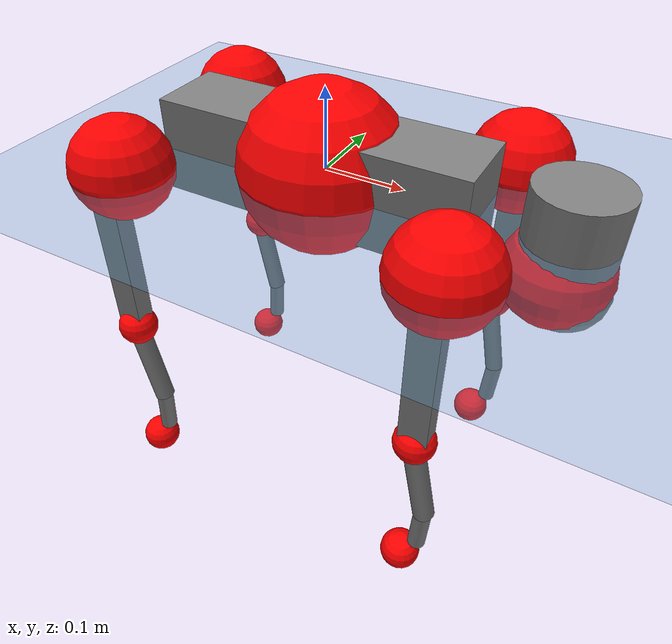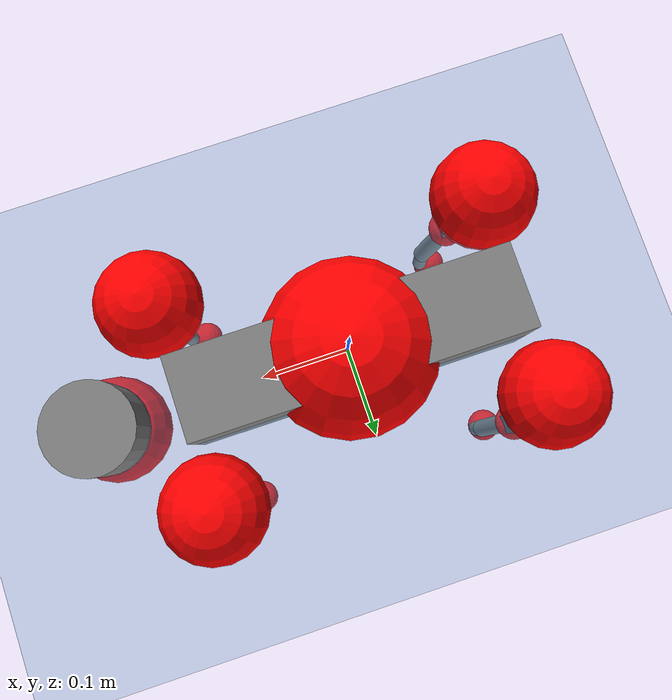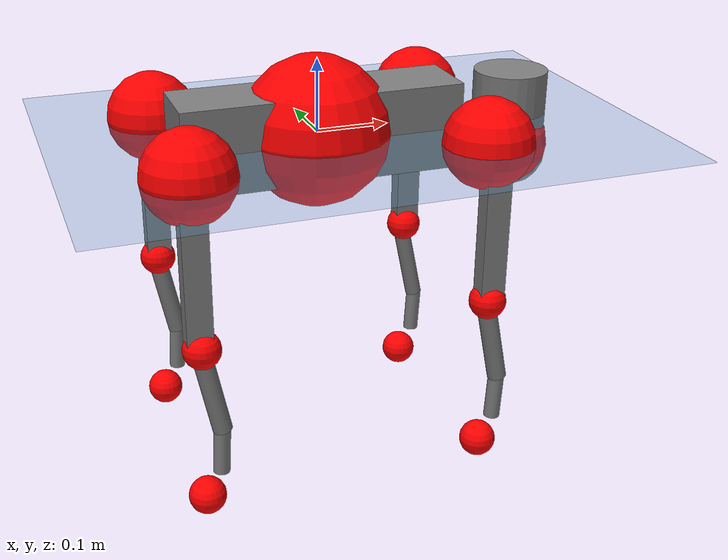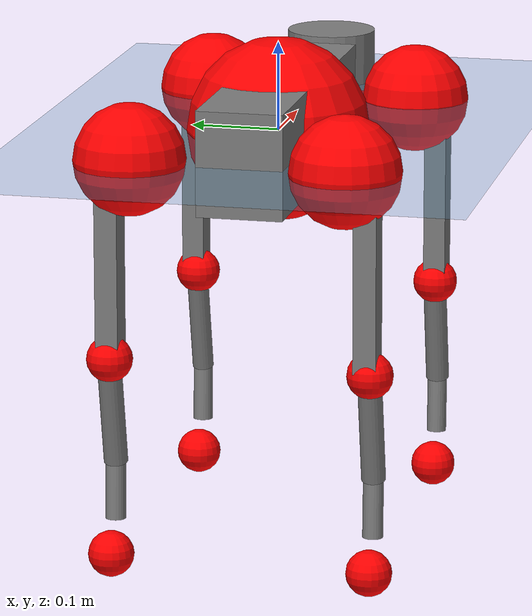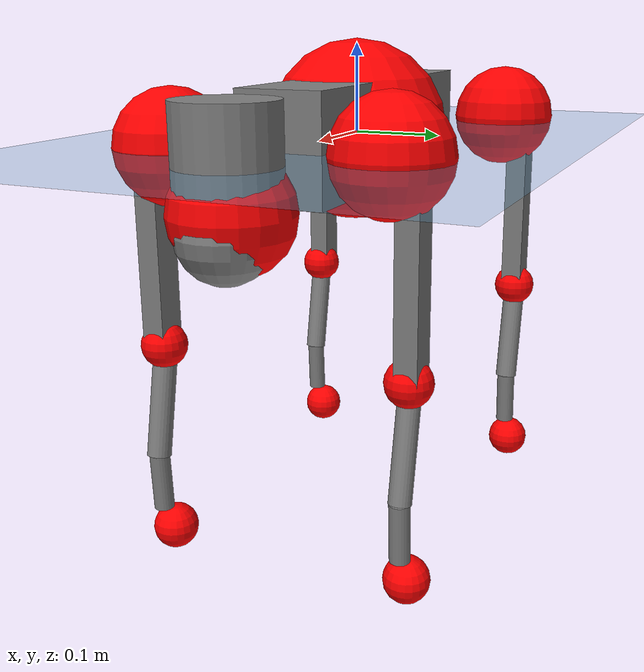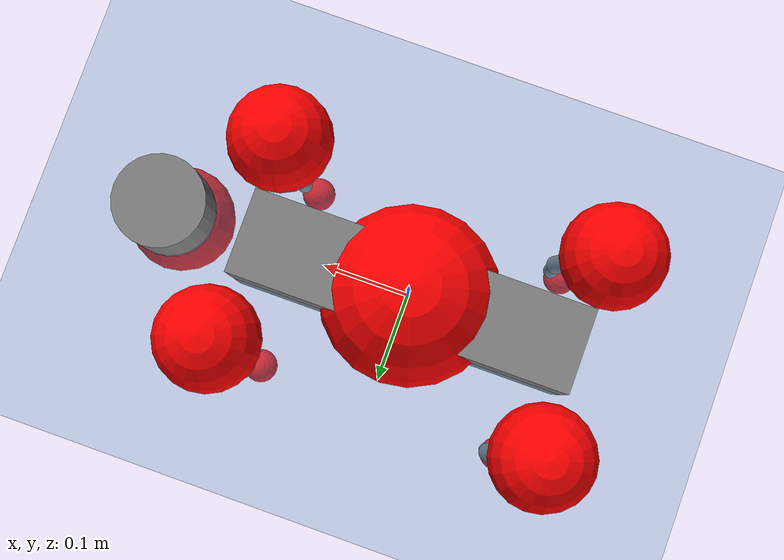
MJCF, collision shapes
<mujoco model="go2">
  <compiler angle="radian" assetdir="assets" balanceinertia="true" inertiafromgeom="false"/>

  <option timestep="0.005" density="1.2" viscosity="2e-05"/>

  <size nkey="1"/>

  <visual>
    <quality shadowsize="8192"/>
    <map shadowclip="0.5"/>
  </visual>

  <default>
    <default class="/">
      <geom contype="0" conaffinity="0" group="1" solref="-1000 -80"/>
      <site size="0.01 0.005 0.005" group="5"/>
      <general forcelimited="true" biastype="affine" gainprm="20" biasprm="0 -20 -0.5"/>
      <default class="go2">
        <joint armature="0.01" damping="0.01" frictionloss="0.2"/>
        <geom condim="1" margin="0.001"/>
        <default class="visual">
          <geom type="mesh" group="2"/>
        </default>
        <default class="collision">
          <geom group="3"/>
          <default class="foot">
            <geom size="0.022 0 0" condim="6" priority="1" friction="0.8 0.02 0.01" solimp="0.015 1 0.022"/>
          </default>
        </default>
        <default class="reward_collision_sphere">
          <geom group="5" rgba="1 0 0 1"/>
        </default>
      </default>
    </default>
  </default>

  <asset>
    <texture type="skybox" colorspace="auto" name="//unnamed_texture_0" builtin="gradient" rgb1="0.95 0.95 0.95" rgb2="0.95 0.95 0.95" width="100" height="600"/>
    <texture type="2d" colorspace="auto" name="texplane" builtin="checker" rgb1="0.345 0.575 0.748" rgb2="0.345 0.575 0.748" markrgb="1 1 1" width="512" height="512"/>
    <material name="MatPlane" class="/" texture="texplane" texuniform="true" texrepeat="2 2" specular="0.9"/>
    <material name="metal" class="/" rgba="0.9 0.95 0.95 1"/>
    <material name="black" class="/" rgba="0 0 0 1"/>
    <material name="white" class="/"/>
    <material name="gray" class="/" rgba="0.671705 0.692426 0.77427 1"/>
    <mesh name="base_0" class="/" file="base_0.obj"/>
    <mesh name="base_1" class="/" file="base_1.obj"/>
    <mesh name="base_2" class="/" file="base_2.obj"/>
    <mesh name="base_3" class="/" file="base_3.obj"/>
    <mesh name="base_4" class="/" file="base_4.obj"/>
    <mesh name="hip_0" class="/" file="hip_0.obj"/>
    <mesh name="hip_1" class="/" file="hip_1.obj"/>
    <mesh name="thigh_0" class="/" file="thigh_0.obj"/>
    <mesh name="thigh_1" class="/" file="thigh_1.obj"/>
    <mesh name="thigh_mirror_0" class="/" file="thigh_mirror_0.obj"/>
    <mesh name="thigh_mirror_1" class="/" file="thigh_mirror_1.obj"/>
    <mesh name="calf_0" class="/" file="calf_0.obj"/>
    <mesh name="calf_1" class="/" file="calf_1.obj"/>
    <mesh name="calf_mirror_0" class="/" file="calf_mirror_0.obj"/>
    <mesh name="calf_mirror_1" class="/" file="calf_mirror_1.obj"/>
    <mesh name="foot" class="/" file="foot.obj"/>
  </asset>

  <worldbody>
    <geom name="floor" class="/" size="100 100 0.125" type="plane" group="0" material="MatPlane"/>
    <light name="toplight_shadow" class="/" pos="0 0 5" dir="0.0990148 0.0990148 -0.990148" type="directional" ambient="0.04 0.04 0.04" diffuse="0.55 0.55 0.55" specular="0.12 0.12 0.12"/>
    <light name="toplight_fill" class="/" pos="0 0 5" dir="0.0990148 0.0990148 -0.990148" type="directional" castshadow="false" ambient="0.04 0.04 0.04" diffuse="0.3 0.3 0.3" specular="0.08 0.08 0.08"/>
    <body name="trunk" childclass="go2" pos="-0.00250303 -0.000508823 0.00218179" quat="1 0.000264351 0.000440822 -0.000595847">
      <inertial pos="0.0267421 0.00249705 -0.00752769" quat="0.00182806 0.704737 -0.00241034 0.709462" mass="7.35759" diaginertia="0.114464 0.117869 0.0335826"/>
      <joint name="//unnamed_joint_0" type="free" armature="0" damping="0" frictionloss="0"/>
      <geom name="//unnamed_geom_1" class="visual" material="black" mesh="base_0"/>
      <geom name="//unnamed_geom_2" class="visual" material="black" mesh="base_1"/>
      <geom name="//unnamed_geom_3" class="visual" material="black" mesh="base_2"/>
      <geom name="//unnamed_geom_4" class="visual" material="white" mesh="base_3"/>
      <geom name="//unnamed_geom_5" class="visual" material="gray" mesh="base_4"/>
      <geom name="trunk_1" class="collision" size="0.19456 0.0483555 0.0589575" type="box"/>
      <geom name="trunk_2" class="collision" size="0.0517171 0.0465454" pos="0.288653 0 0.0105644" type="cylinder"/>
      <geom name="trunk_3" class="collision" size="0.048614" pos="0.296755 0 -0.0633861"/>
      <geom name="//unnamed_geom_9" class="reward_collision_sphere" size="0.103434"/>
      <geom name="//unnamed_geom_10" class="reward_collision_sphere" size="0.0620605" pos="0.283589 0 -0.0475396"/>
      <site name="imu" pos="-0.0440633 -0.00174338 0.0626217" size="0.0103434"/>
      <camera name="track" pos="0 -2.06754 0" quat="0.707107 0.707107 0 0" mode="trackcom"/>
      <camera name="ego_camera" pos="0.315999 0 0.0475396" quat="-0.5 -0.5 0.5 0.5"/>
      <body name="FL_hip" pos="0.197092 0.0499995 0.00162031" quat="0.999999 0.00036521 0.000996043 -0.000151871">
        <inertial pos="-0.00525026 0.0031927 -0.00123429" quat="0.496728 0.499792 0.505539 0.497895" mass="0.811904" diaginertia="0.000998675 0.000768432 0.000672383"/>
        <joint name="FL_hip_joint" pos="0 0 0" axis="0.99998 -0.00449521 -0.00443717" stiffness="0.00212472" range="-1.05149 1.08332" armature="0.0105237" damping="0.0102669" frictionloss="0.209547"/>
        <geom name="//unnamed_geom_11" class="visual" material="metal" mesh="hip_0"/>
        <geom name="//unnamed_geom_12" class="visual" material="gray" mesh="hip_1"/>
        <geom name="//unnamed_geom_13" class="collision" size="0.0475797 0.0206868" pos="0 0.0827017 0" quat="0.707107 0.707107 0 0" type="cylinder"/>
        <geom name="//unnamed_geom_14" class="reward_collision_sphere" size="0.0620605" pos="0 0.072364 0"/>
        <body name="FL_thigh" pos="-0.000824315 0.0944175 0.000550726" quat="0.999999 -0.000640866 0.00101659 -0.00105606">
          <inertial pos="-0.00344227 -0.023513 -0.0337285" quat="0.827918 0.085837 -0.0265934 0.553603" mass="1.26131" diaginertia="0.00621698 0.00717891 0.00116956"/>
          <joint name="FL_thigh_joint" pos="0 0 0" axis="-0.00992147 0.999951 0.000575786" range="-1.62546 3.48708" armature="0.00907856" damping="0.00154208" frictionloss="0.200155"/>
          <geom name="//unnamed_geom_15" class="visual" material="metal" mesh="thigh_0"/>
          <geom name="//unnamed_geom_16" class="visual" material="gray" mesh="thigh_1"/>
          <geom name="//unnamed_geom_17" class="collision" size="0.110157 0.0126707 0.0175838" pos="0 0 -0.11251" quat="0.707107 0 0.707107 0" type="box"/>
          <body name="FL_calf" pos="-0.00217357 -0.00294808 -0.226291" quat="0.999999 -0.00108857 -0.000156054 0.000475595">
            <inertial pos="0.0070935 0.00197541 -0.150417" quat="0.710483 0.000983714 -0.0025973 0.703709" mass="0.256417" diaginertia="0.00158106 0.00171 6.99589e-05"/>
            <joint name="FL_calf_joint" pos="0 0 0" axis="-0.00417712 0.999989 0.00188857" stiffness="0.0125016" range="-2.72485 -0.849238" armature="0.0114187" damping="0.00854592" frictionloss="0.20105"/>
            <geom name="//unnamed_geom_18" class="visual" material="gray" mesh="calf_0"/>
            <geom name="//unnamed_geom_19" class="visual" material="black" mesh="calf_1"/>
            <geom name="FL_calf0" class="collision" size="0.0124121 0.0620605" pos="0.00810254 0 -0.0633861" quat="0.994493 0 -0.104807 0" type="cylinder"/>
            <geom name="//unnamed_geom_21" class="collision" size="0.0113778 0.0336161" pos="0.0202563 0 -0.156352" quat="0.999688 0 0.0249974 0" type="cylinder"/>
            <geom name="//unnamed_geom_22" class="visual" pos="0 0 -0.225021" quat="1 0 0 0" material="black" mesh="foot"/>
            <geom name="FL_foot" class="foot" size="0.0205675" pos="-0.00202563 0 -0.225021"/>
            <geom name="//unnamed_geom_24" class="reward_collision_sphere" size="0.0258585"/>
            <geom name="//unnamed_geom_25" class="reward_collision_sphere" size="0.0258585" pos="-0.00202563 0 -0.225021"/>
            <site name="FL_foot" class="foot" pos="-0.00202563 0 -0.225021" size="0.0103434"/>
          </body>
        </body>
      </body>
      <body name="FR_hip" pos="0.199802 -0.0468675 -0.00186314" quat="1 0.00023721 0.000357813 7.49652e-05">
        <inertial pos="-0.00555918 0.00372488 -9.78681e-05" quat="0.482983 0.504034 0.516809 0.495565" mass="0.760131" diaginertia="0.000989261 0.000692553 0.000659185"/>
        <joint name="FR_hip_joint" pos="0 0 0" axis="0.99995 -0.00987641 -0.00134311" stiffness="0.0116581" range="-1.00039 1.07133" armature="0.00963276" damping="0.0160089" frictionloss="0.228347"/>
        <geom name="//unnamed_geom_26" class="visual" pos="0 -1.97441e-10 -8.46865e-09" quat="4.63268e-05 1 0 0" material="metal" mesh="hip_0"/>
        <geom name="//unnamed_geom_27" class="visual" pos="0 -3.20075e-10 2.09462e-08" quat="4.63268e-05 1 0 0" material="gray" mesh="hip_1"/>
        <geom name="//unnamed_geom_28" class="collision" size="0.0475797 0.0206868" pos="0 -0.0827017 0" quat="0.707107 0.707107 0 0" type="cylinder"/>
        <geom name="//unnamed_geom_29" class="reward_collision_sphere" size="0.0620605" pos="0 -0.072364 0"/>
        <body name="FR_thigh" pos="0.000826187 -0.099087 0.00300741" quat="0.999999 -0.00112142 -0.000342684 -0.000146146">
          <inertial pos="-0.00771035 0.0208248 -0.0351013" quat="0.550761 -0.0214353 0.0832713 0.830222" mass="1.21268" diaginertia="0.00614093 0.00686119 0.00106941"/>
          <joint name="FR_thigh_joint" pos="0 0 0" axis="0.00699048 -0.999976 -0.000321897" stiffness="0.000172519" range="-3.44743 1.51778" armature="0.0103798" damping="0.00561449" frictionloss="0.22523"/>
          <geom name="//unnamed_geom_30" class="visual" material="metal" mesh="thigh_mirror_0"/>
          <geom name="//unnamed_geom_31" class="visual" material="gray" mesh="thigh_mirror_1"/>
          <geom name="//unnamed_geom_32" class="collision" size="0.110157 0.0126707 0.0175838" pos="0 0 -0.11251" quat="0.707107 0 0.707107 0" type="box"/>
          <body name="FR_calf" pos="-0.000793997 0.0012152 -0.222889" quat="1 0.000225022 0.000129737 -9.06428e-05">
            <inertial pos="0.00767039 0.000667031 -0.149808" quat="0.688792 -0.00319424 0.0108605 0.72487" mass="0.263771" diaginertia="0.00159387 0.00166389 6.79202e-05"/>
            <joint name="FR_calf_joint" pos="0 0 0" axis="0.00329195 -0.999946 -0.00987104" stiffness="0.0176452" range="0.91554 2.71267" armature="0.00941068" damping="0" frictionloss="0.222988"/>
            <geom name="//unnamed_geom_33" class="visual" material="gray" mesh="calf_mirror_0"/>
            <geom name="//unnamed_geom_34" class="visual" material="black" mesh="calf_mirror_1"/>
            <geom name="FR_calf0" class="collision" size="0.0134464 0.0620605" pos="0.0101282 0 -0.0633861" quat="0.995004 0 -0.0998334 0" type="cylinder"/>
            <geom name="//unnamed_geom_36" class="collision" size="0.0113778 0.0336161" pos="0.0202563 0 -0.156352" quat="0.999688 0 0.0249974 0" type="cylinder"/>
            <geom name="//unnamed_geom_37" class="visual" pos="0 0 -0.225021" quat="1 0 0 0" material="black" mesh="foot"/>
            <geom name="FR_foot" class="foot" size="0.0244738" pos="-0.00202563 0 -0.225021"/>
            <geom name="//unnamed_geom_39" class="reward_collision_sphere" size="0.0258585"/>
            <geom name="//unnamed_geom_40" class="reward_collision_sphere" size="0.0258585" pos="-0.00202563 0 -0.225021"/>
            <site name="FR_foot" class="foot" pos="-0.00202563 0 -0.225021" size="0.0103434"/>
          </body>
        </body>
      </body>
      <body name="RL_hip" pos="-0.198636 0.0483019 0.00305646" quat="1 -2.98742e-05 3.14031e-05 0.000107516">
        <inertial pos="0.00532022 0.00177157 0.00507052" quat="0.512347 0.494625 0.496239 0.496582" mass="0.709879" diaginertia="0.000831636 0.000647659 0.000593466"/>
        <joint name="RL_hip_joint" pos="0 0 0" axis="-0.999952 0.00361014 -0.00911172" range="-1.03329 1.08901" armature="0.00937046" damping="0.0263277" frictionloss="0.202955"/>
        <geom name="//unnamed_geom_41" class="visual" pos="3.79984e-10 0 7.44856e-08" quat="4.63268e-05 0 1 0" material="metal" mesh="hip_0"/>
        <geom name="//unnamed_geom_42" class="visual" pos="6.15999e-10 0 6.60581e-08" quat="4.63268e-05 0 1 0" material="gray" mesh="hip_1"/>
        <geom name="//unnamed_geom_43" class="collision" size="0.0475797 0.0206868" pos="0 0.0827017 0" quat="0.707107 0.707107 0 0" type="cylinder"/>
        <geom name="//unnamed_geom_44" class="reward_collision_sphere" size="0.0620605" pos="0 0.072364 0"/>
        <body name="RL_thigh" pos="0.000441939 0.0961862 0.000422055" quat="1 4.25163e-05 0.000741242 -0.0006632">
          <inertial pos="0.00162773 -0.020665 -0.0302785" quat="0.83086 0.0849781 -0.017312 0.549683" mass="1.2548" diaginertia="0.00678089 0.00689875 0.00119511"/>
          <joint name="RL_thigh_joint" pos="0 0 0" axis="0.00484739 0.999759 -0.0214208" range="-0.545089 4.54245" armature="0.0116511" damping="0.0145807" frictionloss="0.207378"/>
          <geom name="//unnamed_geom_45" class="visual" material="metal" mesh="thigh_0"/>
          <geom name="//unnamed_geom_46" class="visual" material="gray" mesh="thigh_1"/>
          <geom name="//unnamed_geom_47" class="collision" size="0.110157 0.0126707 0.0175838" pos="0 0 -0.11251" quat="0.707107 0 0.707107 0" type="box"/>
          <body name="RL_calf" pos="-0.00136141 0.00064532 -0.226974" quat="1 -0.000267217 -0.000209916 2.28165e-05">
            <inertial pos="0.00740938 -0.00349387 -0.151748" quat="0.711043 0.00184078 -0.00426747 0.703133" mass="0.248243" diaginertia="0.0014839 0.00155668 6.70003e-05"/>
            <joint name="RL_calf_joint" pos="0 0 0" axis="0.0101362 0.999921 -0.00748662" stiffness="0.00549653" range="-2.77272 -0.825344" armature="0.00844209" damping="0" frictionloss="0.227826"/>
            <geom name="//unnamed_geom_48" class="visual" material="gray" mesh="calf_0"/>
            <geom name="//unnamed_geom_49" class="visual" material="black" mesh="calf_1"/>
            <geom name="RL_calf0" class="collision" size="0.0134464 0.0620605" pos="0.0101282 0 -0.0633861" quat="0.995004 0 -0.0998334 0" type="cylinder"/>
            <geom name="//unnamed_geom_51" class="collision" size="0.0113778 0.0336161" pos="0.0202563 0 -0.156352" quat="0.999688 0 0.0249974 0" type="cylinder"/>
            <geom name="//unnamed_geom_52" class="visual" pos="0 0 -0.225021" quat="1 0 0 0" material="black" mesh="foot"/>
            <geom name="RL_foot" class="foot" size="0.0212652" pos="-0.00202563 0 -0.225021"/>
            <geom name="//unnamed_geom_54" class="reward_collision_sphere" size="0.0258585"/>
            <geom name="//unnamed_geom_55" class="reward_collision_sphere" size="0.0258585" pos="-0.00202563 0 -0.225021"/>
            <site name="RL_foot" class="foot" pos="-0.00202563 0 -0.225021" size="0.0103434"/>
          </body>
        </body>
      </body>
      <body name="RR_hip" pos="-0.201294 -0.0466538 0.00193249" quat="0.999999 -0.00114113 0.000296698 0.00014954">
        <inertial pos="0.00506826 -0.00108144 0.00399138" quat="0.485324 0.520602 0.490066 0.503259" mass="0.777803" diaginertia="0.000997696 0.000743005 0.0006723"/>
        <joint name="RR_hip_joint" pos="0 0 0" axis="-0.99985 0.0111146 0.0132693" range="-0.987767 1.06842" armature="0.00932719" damping="0.00519735" frictionloss="0.210559"/>
        <geom name="//unnamed_geom_56" class="visual" pos="-3.79259e-10 -1.97441e-10 8.29542e-08" quat="2.14617e-09 4.63268e-05 4.63268e-05 -1" material="metal" mesh="hip_0"/>
        <geom name="//unnamed_geom_57" class="visual" pos="-6.17794e-10 -3.20075e-10 4.51119e-08" quat="2.14617e-09 4.63268e-05 4.63268e-05 -1" material="gray" mesh="hip_1"/>
        <geom name="//unnamed_geom_58" class="collision" size="0.0475797 0.0206868" pos="0 -0.0827017 0" quat="0.707107 0.707107 0 0" type="cylinder"/>
        <geom name="//unnamed_geom_59" class="reward_collision_sphere" size="0.0620605" pos="0 -0.072364 0"/>
        <body name="RR_thigh" pos="-0.00440701 -0.0975081 0.00325801" quat="0.999999 -0.000549438 0.000146117 0.00112811">
          <inertial pos="-0.00388605 0.0236101 -0.0319925" quat="0.553382 -0.0204995 0.0848128 0.828345" mass="1.29092" diaginertia="0.0064276 0.00676918 0.00112548"/>
          <joint name="RR_thigh_joint" pos="0 0 0" axis="-0.00922011 -0.999953 -0.00301683" range="-4.52915 0.476015" armature="0.00910571" damping="0.0139013" frictionloss="0.215462"/>
          <geom name="//unnamed_geom_60" class="visual" material="metal" mesh="thigh_mirror_0"/>
          <geom name="//unnamed_geom_61" class="visual" material="gray" mesh="thigh_mirror_1"/>
          <geom name="//unnamed_geom_62" class="collision" size="0.110157 0.0126707 0.0175838" pos="0 0 -0.11251" quat="0.707107 0 0.707107 0" type="box"/>
          <body name="RR_calf" pos="0.00310004 -0.00266638 -0.228388" quat="0.999998 1.06028e-05 0.00113908 -0.00147799">
            <inertial pos="0.00450697 -0.000821889 -0.14703" quat="0.707625 -0.00296474 -0.00106093 0.706582" mass="0.259782" diaginertia="0.00156703 0.00172541 6.84222e-05"/>
            <joint name="RR_calf_joint" pos="0 0 0" axis="0.00489631 -0.999974 -0.00529222" stiffness="0.00898923" range="0.822395 2.65942" armature="0.0103684" damping="0" frictionloss="0.22333"/>
            <geom name="//unnamed_geom_63" class="visual" material="gray" mesh="calf_mirror_0"/>
            <geom name="//unnamed_geom_64" class="visual" material="black" mesh="calf_mirror_1"/>
            <geom name="RR_calf0" class="collision" size="0.0134464 0.0620605" pos="0.0101282 0 -0.0633861" quat="0.995004 0 -0.0998334 0" type="cylinder"/>
            <geom name="//unnamed_geom_66" class="collision" size="0.0113778 0.0336161" pos="0.0202563 0 -0.156352" quat="0.999688 0 0.0249974 0" type="cylinder"/>
            <geom name="//unnamed_geom_67" class="visual" pos="0 0 -0.225021" quat="1 0 0 0" material="black" mesh="foot"/>
            <geom name="RR_foot" class="foot" size="0.0234268" pos="-0.00202563 0 -0.225021"/>
            <geom name="//unnamed_geom_69" class="reward_collision_sphere" size="0.0258585"/>
            <geom name="//unnamed_geom_70" class="reward_collision_sphere" size="0.0258585" pos="-0.00202563 0 -0.225021"/>
            <site name="RR_foot" class="foot" pos="-0.00202563 0 -0.225021" size="0.0103434"/>
          </body>
        </body>
      </body>
    </body>
  </worldbody>

  <contact>
    <pair class="/" geom1="floor" geom2="FL_foot" name="//unnamed_contact_0"/>
    <pair class="/" geom1="floor" geom2="FR_foot" name="//unnamed_contact_1"/>
    <pair class="/" geom1="floor" geom2="RL_foot" name="//unnamed_contact_2"/>
    <pair class="/" geom1="floor" geom2="RR_foot" name="//unnamed_contact_3"/>
  </contact>

  <actuator>
    <general name="FL_hip" class="/" joint="FL_hip_joint" forcerange="-25.8211 25.8211" gainprm="20.3916" biasprm="0 -20.3916 -0.50831"/>
    <general name="FL_thigh" class="/" joint="FL_thigh_joint" forcerange="-28.3169 28.3169" gainprm="20.3916" biasprm="0 -20.3916 -0.50831"/>
    <general name="FL_calf" class="/" joint="FL_calf_joint" forcerange="-43.0407 43.0407" gainprm="20.3916" biasprm="0 -20.3916 -0.50831"/>
    <general name="FR_hip" class="/" joint="FR_hip_joint" forcerange="-24.3432 24.3432" gainprm="20.3916" biasprm="0 -20.3916 -0.50831"/>
    <general name="FR_thigh" class="/" joint="FR_thigh_joint" forcerange="-23.9157 23.9157" gainprm="20.3916" biasprm="0 -20.3916 -0.50831"/>
    <general name="FR_calf" class="/" joint="FR_calf_joint" forcerange="-42.484 42.484" gainprm="20.3916" biasprm="0 -20.3916 -0.50831"/>
    <general name="RL_hip" class="/" joint="RL_hip_joint" forcerange="-25.2286 25.2286" gainprm="20.3916" biasprm="0 -20.3916 -0.50831"/>
    <general name="RL_thigh" class="/" joint="RL_thigh_joint" forcerange="-25.4019 25.4019" gainprm="20.3916" biasprm="0 -20.3916 -0.50831"/>
    <general name="RL_calf" class="/" joint="RL_calf_joint" forcerange="-50.6057 50.6057" gainprm="20.3916" biasprm="0 -20.3916 -0.50831"/>
    <general name="RR_hip" class="/" joint="RR_hip_joint" forcerange="-22.6244 22.6244" gainprm="20.3916" biasprm="0 -20.3916 -0.50831"/>
    <general name="RR_thigh" class="/" joint="RR_thigh_joint" forcerange="-22.2051 22.2051" gainprm="20.3916" biasprm="0 -20.3916 -0.50831"/>
    <general name="RR_calf" class="/" joint="RR_calf_joint" forcerange="-51.8532 51.8532" gainprm="20.3916" biasprm="0 -20.3916 -0.50831"/>
  </actuator>

  <sensor>
    <gyro site="imu" name="imu_angular_velocity"/>
    <velocimeter site="imu" name="imu_linear_velocity"/>
    <framelinvel objtype="site" objname="FL_foot" name="FL_foot_global_linear_velocity"/>
    <framelinvel objtype="site" objname="FR_foot" name="FR_foot_global_linear_velocity"/>
    <framelinvel objtype="site" objname="RL_foot" name="RL_foot_global_linear_velocity"/>
    <framelinvel objtype="site" objname="RR_foot" name="RR_foot_global_linear_velocity"/>
  </sensor>

  <keyframe>
    <key name="home" qpos="0 0 0.325 1 0 0 0 0.1 0.8 -1.5 -0.1 -0.8 1.5 -0.1 0.8 -1.5 0.1 -0.8 1.5"/>
  </keyframe>
</mujoco>
